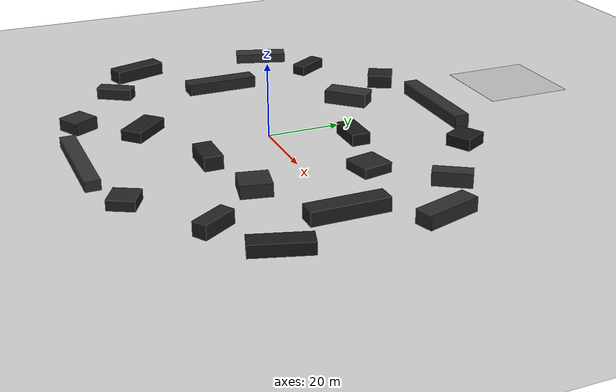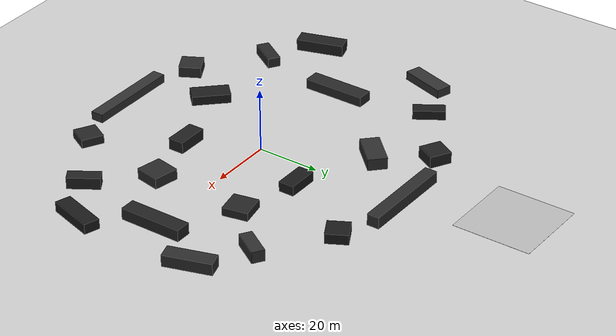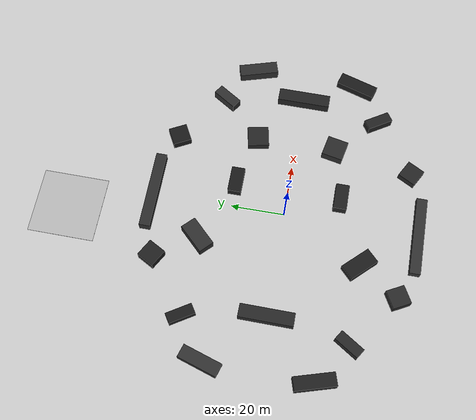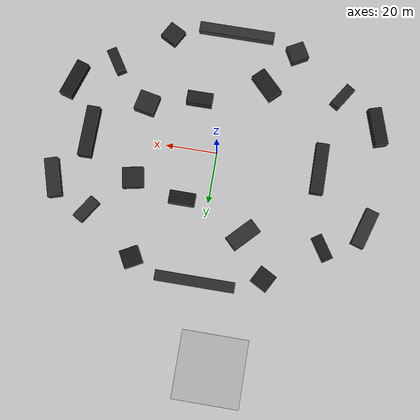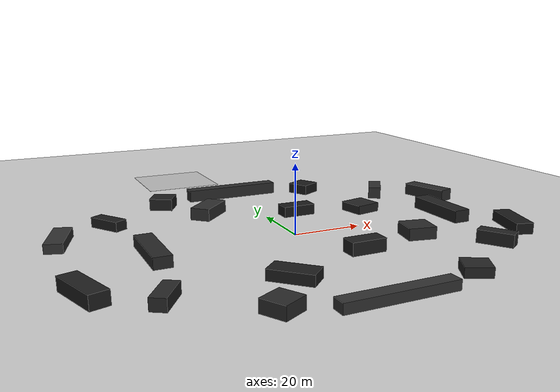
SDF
<sdf version="1.6">
 <world name="test_city_dark_buildings">
  <plugin name="static_world_plugin" filename="libstatic_world_plugin.so"/>
  <include><uri>model://sun</uri></include>
  <include><uri>model://dywan</uri><pose>0 0 0.01 0 0 0</pose></include>
  <include><uri>model://intruz</uri><pose>-10.91 80.44 0.03 0 0 0</pose></include>
  <model name="building_1">
   <static>true</static>
   <pose>10 20 0 0 0 0</pose>
   <link name="link">
    <collision name="collision"><geometry><box><size>10 5 6</size></box></geometry></collision>
    <visual name="visual">
     <geometry><box><size>10 5 6</size></box></geometry>
     <material><ambient>0.1 0.1 0.1 1</ambient><diffuse>0.1 0.1 0.1 1</diffuse></material>
    </visual>
   </link>
  </model>
  <model name="building_2">
   <static>true</static>
   <pose>10 -20 0 0 0 0</pose>
   <link name="link">
    <collision name="collision"><geometry><box><size>10 5 7</size></box></geometry></collision>
    <visual name="visual">
     <geometry><box><size>10 5 7</size></box></geometry>
     <material><ambient>0.12 0.12 0.12 1</ambient><diffuse>0.12 0.12 0.12 1</diffuse></material>
    </visual>
   </link>
  </model>
  <model name="building_3">
   <static>true</static>
   <pose>30 15 0 0 0 0.2</pose>
   <link name="link">
    <collision name="collision"><geometry><box><size>8 8 5</size></box></geometry></collision>
    <visual name="visual">
     <geometry><box><size>8 8 5</size></box></geometry>
     <material><ambient>0.14 0.14 0.14 1</ambient><diffuse>0.14 0.14 0.14 1</diffuse></material>
    </visual>
   </link>
  </model>
  <model name="building_4">
   <static>true</static>
   <pose>30 -15 0 0 0 -0.2</pose>
   <link name="link">
    <collision name="collision"><geometry><box><size>8 8 6.5</size></box></geometry></collision>
    <visual name="visual">
     <geometry><box><size>8 8 6.5</size></box></geometry>
     <material><ambient>0.16 0.16 0.16 1</ambient><diffuse>0.16 0.16 0.16 1</diffuse></material>
    </visual>
   </link>
  </model>
  <model name="building_5">
   <static>true</static>
   <pose>-15 30 0 0 0 0.8</pose>
   <link name="link">
    <collision name="collision"><geometry><box><size>12 6 7</size></box></geometry></collision>
    <visual name="visual">
     <geometry><box><size>12 6 7</size></box></geometry>
     <material><ambient>0.18 0.18 0.18 1</ambient><diffuse>0.18 0.18 0.18 1</diffuse></material>
    </visual>
   </link>
  </model>
  <model name="building_6">
   <static>true</static>
   <pose>-15 -30 0 0 0 -0.8</pose>
   <link name="link">
    <collision name="collision"><geometry><box><size>12 6 5.5</size></box></geometry></collision>
    <visual name="visual">
     <geometry><box><size>12 6 5.5</size></box></geometry>
     <material><ambient>0.11 0.11 0.11 1</ambient><diffuse>0.11 0.11 0.11 1</diffuse></material>
    </visual>
   </link>
  </model>
  <model name="building_7">
   <static>true</static>
   <pose>50 0 0 0 0 1.57</pose>
   <link name="link">
    <collision name="collision"><geometry><box><size>20 5 7</size></box></geometry></collision>
    <visual name="visual">
     <geometry><box><size>20 5 7</size></box></geometry>
     <material><ambient>0.13 0.13 0.13 1</ambient><diffuse>0.13 0.13 0.13 1</diffuse></material>
    </visual>
   </link>
  </model>
  <model name="building_8">
   <static>true</static>
   <pose>-40 0 0 0 0 1.57</pose>
   <link name="link">
    <collision name="collision"><geometry><box><size>20 5 6</size></box></geometry></collision>
    <visual name="visual">
     <geometry><box><size>20 5 6</size></box></geometry>
     <material><ambient>0.15 0.15 0.15 1</ambient><diffuse>0.15 0.15 0.15 1</diffuse></material>
    </visual>
   </link>
  </model>
  <model name="building_9">
   <static>true</static>
   <pose>0 50 0 0 0 0</pose>
   <link name="link">
    <collision name="collision"><geometry><box><size>30 4 7</size></box></geometry></collision>
    <visual name="visual">
     <geometry><box><size>30 4 7</size></box></geometry>
     <material><ambient>0.17 0.17 0.17 1</ambient><diffuse>0.17 0.17 0.17 1</diffuse></material>
    </visual>
   </link>
  </model>
  <model name="building_10">
   <static>true</static>
   <pose>0 -50 0 0 0 0</pose>
   <link name="link">
    <collision name="collision"><geometry><box><size>30 4 5</size></box></geometry></collision>
    <visual name="visual">
     <geometry><box><size>30 4 5</size></box></geometry>
     <material><ambient>0.19 0.19 0.19 1</ambient><diffuse>0.19 0.19 0.19 1</diffuse></material>
    </visual>
   </link>
  </model>
  <model name="building_11">
   <static>true</static>
   <pose>25 45 0 0 0 0.5</pose>
   <link name="link">
    <collision name="collision"><geometry><box><size>7 7 6</size></box></geometry></collision>
    <visual name="visual">
     <geometry><box><size>7 7 6</size></box></geometry>
     <material><ambient>0.1 0.1 0.1 1</ambient><diffuse>0.1 0.1 0.1 1</diffuse></material>
    </visual>
   </link>
  </model>
  <model name="building_12">
   <static>true</static>
   <pose>-25 45 0 0 0 -0.5</pose>
   <link name="link">
    <collision name="collision"><geometry><box><size>7 7 7</size></box></geometry></collision>
    <visual name="visual">
     <geometry><box><size>7 7 7</size></box></geometry>
     <material><ambient>0.12 0.12 0.12 1</ambient><diffuse>0.12 0.12 0.12 1</diffuse></material>
    </visual>
   </link>
  </model>
  <model name="building_13">
   <static>true</static>
   <pose>25 -45 0 0 0 -0.5</pose>
   <link name="link">
    <collision name="collision"><geometry><box><size>7 7 5</size></box></geometry></collision>
    <visual name="visual">
     <geometry><box><size>7 7 5</size></box></geometry>
     <material><ambient>0.14 0.14 0.14 1</ambient><diffuse>0.14 0.14 0.14 1</diffuse></material>
    </visual>
   </link>
  </model>
  <model name="building_14">
   <static>true</static>
   <pose>-25 -45 0 0 0 0.5</pose>
   <link name="link">
    <collision name="collision"><geometry><box><size>7 7 6.5</size></box></geometry></collision>
    <visual name="visual">
     <geometry><box><size>7 7 6.5</size></box></geometry>
     <material><ambient>0.16 0.16 0.16 1</ambient><diffuse>0.16 0.16 0.16 1</diffuse></material>
    </visual>
   </link>
  </model>
  <model name="building_15">
   <static>true</static>
   <pose>45 30 0 0 0 1</pose>
   <link name="link">
    <collision name="collision"><geometry><box><size>10 4 7</size></box></geometry></collision>
    <visual name="visual">
     <geometry><box><size>10 4 7</size></box></geometry>
     <material><ambient>0.18 0.18 0.18 1</ambient><diffuse>0.18 0.18 0.18 1</diffuse></material>
    </visual>
   </link>
  </model>
  <model name="building_16">
   <static>true</static>
   <pose>-45 30 0 0 0 -1</pose>
   <link name="link">
    <collision name="collision"><geometry><box><size>10 4 5.5</size></box></geometry></collision>
    <visual name="visual">
     <geometry><box><size>10 4 5.5</size></box></geometry>
     <material><ambient>0.11 0.11 0.11 1</ambient><diffuse>0.11 0.11 0.11 1</diffuse></material>
    </visual>
   </link>
  </model>
  <model name="building_17">
   <static>true</static>
   <pose>45 -30 0 0 0 -1</pose>
   <link name="link">
    <collision name="collision"><geometry><box><size>10 4 7</size></box></geometry></collision>
    <visual name="visual">
     <geometry><box><size>10 4 7</size></box></geometry>
     <material><ambient>0.13 0.13 0.13 1</ambient><diffuse>0.13 0.13 0.13 1</diffuse></material>
    </visual>
   </link>
  </model>
  <model name="building_18">
   <static>true</static>
   <pose>-45 -30 0 0 0 1</pose>
   <link name="link">
    <collision name="collision"><geometry><box><size>10 4 6</size></box></geometry></collision>
    <visual name="visual">
     <geometry><box><size>10 4 6</size></box></geometry>
     <material><ambient>0.15 0.15 0.15 1</ambient><diffuse>0.15 0.15 0.15 1</diffuse></material>
    </visual>
   </link>
  </model>
  <model name="building_19">
   <static>true</static>
   <pose>60 20 0 0 0 0.3</pose>
   <link name="link">
    <collision name="collision"><geometry><box><size>5 15 7</size></box></geometry></collision>
    <visual name="visual">
     <geometry><box><size>5 15 7</size></box></geometry>
     <material><ambient>0.17 0.17 0.17 1</ambient><diffuse>0.17 0.17 0.17 1</diffuse></material>
    </visual>
   </link>
  </model>
  <model name="building_20">
   <static>true</static>
   <pose>-60 20 0 0 0 -0.3</pose>
   <link name="link">
    <collision name="collision"><geometry><box><size>5 15 5</size></box></geometry></collision>
    <visual name="visual">
     <geometry><box><size>5 15 5</size></box></geometry>
     <material><ambient>0.19 0.19 0.19 1</ambient><diffuse>0.19 0.19 0.19 1</diffuse></material>
    </visual>
   </link>
  </model>
  <model name="building_21">
   <static>true</static>
   <pose>60 -20 0 0 0 -0.3</pose>
   <link name="link">
    <collision name="collision"><geometry><box><size>5 15 6</size></box></geometry></collision>
    <visual name="visual">
     <geometry><box><size>5 15 6</size></box></geometry>
     <material><ambient>0.1 0.1 0.1 1</ambient><diffuse>0.1 0.1 0.1 1</diffuse></material>
    </visual>
   </link>
  </model>
  <model name="building_22">
   <static>true</static>
   <pose>-60 -20 0 0 0 0.3</pose>
   <link name="link">
    <collision name="collision"><geometry><box><size>5 15 7</size></box></geometry></collision>
    <visual name="visual">
     <geometry><box><size>5 15 7</size></box></geometry>
     <material><ambient>0.12 0.12 0.12 1</ambient><diffuse>0.12 0.12 0.12 1</diffuse></material>
    </visual>
   </link>
  </model>
 </world>
</sdf>

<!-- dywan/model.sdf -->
<sdf version="1.6">
  <model name="dywan">
    <static>true</static>
    <link name="link">
      <collision name="collision">
        <geometry>
          <plane>
            <normal>0 0 1</normal>
            <size>600 600</size>
          </plane>
        </geometry>
        <surface>
          <friction>
            <ode>
              <mu>100</mu>
              <mu2>50</mu2>
            </ode>
          </friction>
        </surface>
      </collision>
      <visual name="visual">
        <cast_shadows>false</cast_shadows>
        <geometry>
          <plane>
            <normal>0 0 1</normal>
            <size>600 600</size>
          </plane>
        </geometry>
        <material>
          <script>
            <uri>model://dywan/materials/scripts</uri>
            <name>Dywan/Image</name>
          </script>
        </material>
      </visual>
    </link>
  </model>
</sdf>

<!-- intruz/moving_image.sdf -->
<sdf version="1.6">
  <model name="intruz">
    <static>false</static>
    <link name="link">
      <gravity>false</gravity>
      <kinematic>true</kinematic>
      <collision name="collision">
        <geometry>
          <plane>
            <normal>0 0 1</normal>
            <size>5 5</size>
          </plane>
        </geometry>
        <surface>
          <friction>
            <ode>
              <mu>100</mu>
              <mu2>50</mu2>
            </ode>
          </friction>
        </surface>
      </collision>
      <visual name="visual">
        <cast_shadows>false</cast_shadows>
        <geometry>
          <plane>
            <normal>0 0 1</normal>
            <size>25 25</size>
          </plane>
        </geometry>
        <material>
          <script>
            <uri>model://intruz/materials/scripts</uri>
            <name>intruz/Image</name>
          </script>
        </material>
      </visual>
    </link>
    <pose>-10.91 80.44 0.03 0 0 0</pose>
  </model>
</sdf>
